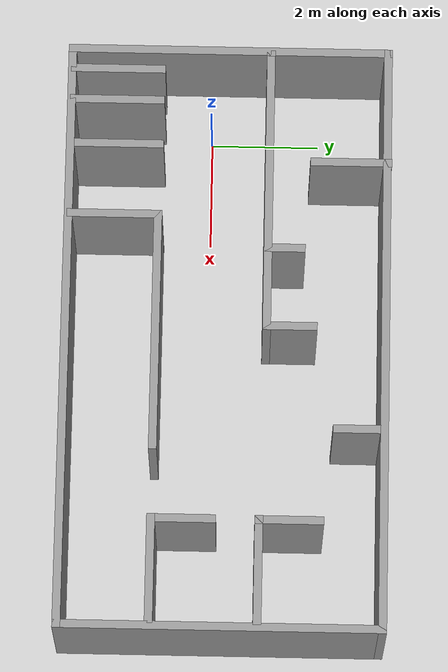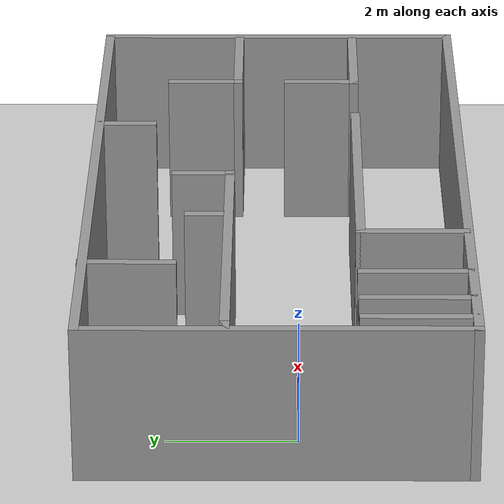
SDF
<sdf version="1.6">
 <world name="default">
  <light name="sun" type="directional">
   <pose>0 0 10 0 -0 0</pose>
   <diffuse>0.8 0.8 0.8 1</diffuse>
   <specular>0.2 0.2 0.2 1</specular>
   <attenuation>
    <range>1000</range>
    <constant>0.9</constant>
    <linear>0.01</linear>
    <quadratic>0.001</quadratic>
   </attenuation>
   <direction>-0.5 0.1 -0.9</direction>
  </light>
  <model name="ground_plane">
   <static>1</static>
   <link name="link">
    <collision name="collision">
     <geometry><plane><normal>0 0 1</normal><size>100 100</size></plane></geometry>
     <surface>
      <contact><collide_bitmask>65535</collide_bitmask></contact>
      <friction><ode><mu>100</mu><mu2>50</mu2></ode></friction>
     </surface>
    </collision>
    <visual name="visual">
     <cast_shadows>0</cast_shadows>
     <geometry><plane><normal>0 0 1</normal><size>100 100</size></plane></geometry>
     <material>
      <script><uri>file://media/materials/scripts/gazebo.material</uri><name>Gazebo/Grey</name></script>
     </material>
    </visual>
   </link>
  </model>
  <gravity>0 0 -9.8</gravity>
  <magnetic_field>6e-06 2.3e-05 -4.2e-05</magnetic_field>
  <atmosphere type="adiabatic"/>
  <physics name="default_physics" default="0" type="ode">
   <max_step_size>0.001</max_step_size>
   <real_time_factor>1</real_time_factor>
   <real_time_update_rate>1000</real_time_update_rate>
  </physics>
  <scene><ambient>0.4 0.4 0.4 1</ambient><background>0.7 0.7 0.7 1</background><shadows>1</shadows></scene>
  <audio><device>default</device></audio>
  <spherical_coordinates>
   <surface_model>EARTH_WGS84</surface_model>
   <latitude_deg>0</latitude_deg>
   <longitude_deg>0</longitude_deg>
   <elevation>0</elevation>
   <heading_deg>0</heading_deg>
  </spherical_coordinates>
  <model name="corridor">
   <pose>4.35155 0.387255 0 0 -0 0</pose>
   <link name="Wall_0">
    <collision name="Wall_0_Collision">
     <geometry><box><size>11 0.15 2.5</size></box></geometry>
     <pose>0 0 1.25 0 -0 0</pose>
    </collision>
    <visual name="Wall_0_Visual">
     <pose>0 0 1.25 0 -0 0</pose>
     <geometry><box><size>11 0.15 2.5</size></box></geometry>
     <material>
      <script><uri>file://media/materials/scripts/gazebo.material</uri><name>Gazebo/Grey</name></script>
      <ambient>1 1 1 1</ambient>
     </material>
     <meta><layer>0</layer></meta>
    </visual>
    <pose>0 -2.9875 0 0 -0 3.14159</pose>
   </link>
   <link name="Wall_1">
    <collision name="Wall_1_Collision">
     <geometry><box><size>6 0.15 2.5</size></box></geometry>
     <pose>0 0 1.25 0 -0 0</pose>
    </collision>
    <visual name="Wall_1_Visual">
     <pose>0 0 1.25 0 -0 0</pose>
     <geometry><box><size>6 0.15 2.5</size></box></geometry>
     <material>
      <script><uri>file://media/materials/scripts/gazebo.material</uri><name>Gazebo/Grey</name></script>
      <ambient>1 1 1 1</ambient>
     </material>
     <meta><layer>0</layer></meta>
    </visual>
    <pose>-5.425 -0.0625 0 0 -0 1.5708</pose>
   </link>
   <link name="Wall_13">
    <collision name="Wall_13_Collision">
     <geometry><box><size>1.75 0.15 2.5</size></box></geometry>
     <pose>0 0 1.25 0 -0 0</pose>
    </collision>
    <visual name="Wall_13_Visual">
     <pose>0 0 1.25 0 -0 0</pose>
     <geometry><box><size>1.75 0.15 2.5</size></box></geometry>
     <material>
      <script><uri>file://media/materials/scripts/gazebo.material</uri><name>Gazebo/Grey</name></script>
      <ambient>1 1 1 1</ambient>
     </material>
     <meta><layer>0</layer></meta>
    </visual>
    <pose>-4.445 -2.1375 0 0 -0 -1.5708</pose>
   </link>
   <link name="Wall_16">
    <collision name="Wall_16_Collision">
     <geometry><box><size>1.75 0.15 2.5</size></box></geometry>
     <pose>0 0 1.25 0 -0 0</pose>
    </collision>
    <visual name="Wall_16_Visual">
     <pose>0 0 1.25 0 -0 0</pose>
     <geometry><box><size>1.75 0.15 2.5</size></box></geometry>
     <material>
      <script><uri>file://media/materials/scripts/gazebo.material</uri><name>Gazebo/Grey</name></script>
      <ambient>1 1 1 1</ambient>
     </material>
     <meta><layer>0</layer></meta>
    </visual>
    <pose>-3.595 -2.1375 0 0 -0 -1.5708</pose>
   </link>
   <link name="Wall_19">
    <collision name="Wall_19_Collision">
     <geometry><box><size>1.75 0.15 2.5</size></box></geometry>
     <pose>0 0 1.25 0 -0 0</pose>
    </collision>
    <visual name="Wall_19_Visual">
     <pose>0 0 1.25 0 -0 0</pose>
     <geometry><box><size>1.75 0.15 2.5</size></box></geometry>
     <material>
      <script><uri>file://media/materials/scripts/gazebo.material</uri><name>Gazebo/Grey</name></script>
      <ambient>1 1 1 1</ambient>
     </material>
     <meta><layer>0</layer></meta>
    </visual>
    <pose>-2.245 -2.1375 0 0 -0 -1.5708</pose>
   </link>
   <link name="Wall_24">
    <collision name="Wall_24_Collision">
     <geometry><box><size>4.5 0.15 2.5</size></box></geometry>
     <pose>0 0 1.25 0 -0 0</pose>
    </collision>
    <visual name="Wall_24_Visual">
     <pose>0 0 1.25 0 -0 0</pose>
     <geometry><box><size>4.5 0.15 2.5</size></box></geometry>
     <material>
      <script><uri>file://media/materials/scripts/gazebo.material</uri><name>Gazebo/Grey</name></script>
      <ambient>1 1 1 1</ambient>
     </material>
     <meta><layer>0</layer></meta>
    </visual>
    <pose>-0.07 -1.3375 0 0 -0 0</pose>
   </link>
   <link name="Wall_3">
    <collision name="Wall_3_Collision">
     <geometry><box><size>6 0.15 2.5</size></box></geometry>
     <pose>0 0 1.25 0 -0 0</pose>
    </collision>
    <visual name="Wall_3_Visual">
     <pose>0 0 1.25 0 -0 0</pose>
     <geometry><box><size>6 0.15 2.5</size></box></geometry>
     <material>
      <script><uri>file://media/materials/scripts/gazebo.material</uri><name>Gazebo/Grey</name></script>
      <ambient>1 1 1 1</ambient>
     </material>
     <meta><layer>0</layer></meta>
    </visual>
    <pose>5.425 -0.0625 0 0 -0 1.5708</pose>
   </link>
   <link name="Wall_31">
    <collision name="Wall_31_Collision">
     <geometry><box><size>2 0.15 2.5</size></box></geometry>
     <pose>0 0 1.25 0 -0 0</pose>
    </collision>
    <visual name="Wall_31_Visual">
     <pose>0 0 1.25 0 -0 0</pose>
     <geometry><box><size>2 0.15 2.5</size></box></geometry>
     <material>
      <script><uri>file://media/materials/scripts/gazebo.material</uri><name>Gazebo/Grey</name></script>
      <ambient>1 1 1 1</ambient>
     </material>
     <meta><layer>0</layer></meta>
    </visual>
    <pose>4.38 -1.3375 0 0 -0 0</pose>
   </link>
   <link name="Wall_33">
    <collision name="Wall_33_Collision">
     <geometry><box><size>1.25 0.15 2.5</size></box></geometry>
     <pose>0 0 1.25 0 -0 0</pose>
    </collision>
    <visual name="Wall_33_Visual">
     <pose>0 0 1.25 0 -0 0</pose>
     <geometry><box><size>1.25 0.15 2.5</size></box></geometry>
     <material>
      <script><uri>file://media/materials/scripts/gazebo.material</uri><name>Gazebo/Grey</name></script>
      <ambient>1 1 1 1</ambient>
     </material>
     <meta><layer>0</layer></meta>
    </visual>
    <pose>3.455 -0.7875 0 0 -0 1.5708</pose>
   </link>
   <link name="Wall_35">
    <collision name="Wall_35_Collision">
     <geometry><box><size>2 0.15 2.5</size></box></geometry>
     <pose>0 0 1.25 0 -0 0</pose>
    </collision>
    <visual name="Wall_35_Visual">
     <pose>0 0 1.25 0 -0 0</pose>
     <geometry><box><size>2 0.15 2.5</size></box></geometry>
     <material>
      <script><uri>file://media/materials/scripts/gazebo.material</uri><name>Gazebo/Grey</name></script>
      <ambient>1 1 1 1</ambient>
     </material>
     <meta><layer>0</layer></meta>
    </visual>
    <pose>4.38 0.6125 0 0 -0 0</pose>
   </link>
   <link name="Wall_40">
    <collision name="Wall_40_Collision">
     <geometry><box><size>1.25 0.15 2.5</size></box></geometry>
     <pose>0 0 1.25 0 -0 0</pose>
    </collision>
    <visual name="Wall_40_Visual">
     <pose>0 0 1.25 0 -0 0</pose>
     <geometry><box><size>1.25 0.15 2.5</size></box></geometry>
     <material>
      <script><uri>file://media/materials/scripts/gazebo.material</uri><name>Gazebo/Grey</name></script>
      <ambient>1 1 1 1</ambient>
     </material>
     <meta><layer>0</layer></meta>
    </visual>
    <pose>3.455 1.1625 0 0 -0 1.5708</pose>
   </link>
   <link name="Wall_43">
    <collision name="Wall_43_Collision">
     <geometry><box><size>1 0.15 2.5</size></box></geometry>
     <pose>0 0 1.25 0 -0 0</pose>
    </collision>
    <visual name="Wall_43_Visual">
     <pose>0 0 1.25 0 -0 0</pose>
     <geometry><box><size>1 0.15 2.5</size></box></geometry>
     <material>
      <script><uri>file://media/materials/scripts/gazebo.material</uri><name>Gazebo/Grey</name></script>
      <ambient>1 1 1 1</ambient>
     </material>
     <meta><layer>0</layer></meta>
    </visual>
    <pose>-0.165 1.1175 0 0 -0 -1.5708</pose>
   </link>
   <link name="Wall_44">
    <collision name="Wall_44_Collision">
     <geometry><box><size>5.25 0.15 2.5</size></box></geometry>
     <pose>0 0 1.25 0 -0 0</pose>
    </collision>
    <visual name="Wall_44_Visual">
     <pose>0 0 1.25 0 -0 0</pose>
     <geometry><box><size>5.25 0.15 2.5</size></box></geometry>
     <material>
      <script><uri>file://media/materials/scripts/gazebo.material</uri><name>Gazebo/Grey</name></script>
      <ambient>1 1 1 1</ambient>
     </material>
     <meta><layer>0</layer></meta>
    </visual>
    <pose>-2.715 0.6925 0 0 -0 3.14159</pose>
   </link>
   <link name="Wall_48">
    <collision name="Wall_48_Collision">
     <geometry><box><size>0.25 0.15 2.5</size></box></geometry>
     <pose>0 0 1.25 0 -0 0</pose>
    </collision>
    <visual name="Wall_48_Visual">
     <pose>0 0 1.25 0 -0 0</pose>
     <geometry><box><size>0.25 0.15 2.5</size></box></geometry>
     <material>
      <script><uri>file://media/materials/scripts/gazebo.material</uri><name>Gazebo/Grey</name></script>
      <ambient>1 1 1 1</ambient>
     </material>
     <meta><layer>0</layer></meta>
    </visual>
    <pose>-5.315 0.6925 0 0 -0 3.14159</pose>
   </link>
   <link name="Wall_52">
    <collision name="Wall_52_Collision">
     <geometry><box><size>1.5 0.15 2.5</size></box></geometry>
     <pose>0 0 1.25 0 -0 0</pose>
    </collision>
    <visual name="Wall_52_Visual">
     <pose>0 0 1.25 0 -0 0</pose>
     <geometry><box><size>1.5 0.15 2.5</size></box></geometry>
     <material>
      <script><uri>file://media/materials/scripts/gazebo.material</uri><name>Gazebo/Grey</name></script>
      <ambient>1 1 1 1</ambient>
     </material>
     <meta><layer>0</layer></meta>
    </visual>
    <pose>-3.305 2.1975 0 0 -0 1.5708</pose>
   </link>
   <link name="Wall_55">
    <collision name="Wall_55_Collision">
     <geometry><box><size>0.75 0.15 2.5</size></box></geometry>
     <pose>0 0 1.25 0 -0 0</pose>
    </collision>
    <visual name="Wall_55_Visual">
     <pose>0 0 1.25 0 -0 0</pose>
     <geometry><box><size>0.75 0.15 2.5</size></box></geometry>
     <material>
      <script><uri>file://media/materials/scripts/gazebo.material</uri><name>Gazebo/Grey</name></script>
      <ambient>1 1 1 1</ambient>
     </material>
     <meta><layer>0</layer></meta>
    </visual>
    <pose>-1.645 1.0025 0 0 -0 1.5708</pose>
   </link>
   <link name="Wall_57">
    <collision name="Wall_57_Collision">
     <geometry><box><size>1 0.15 2.5</size></box></geometry>
     <pose>0 0 1.25 0 -0 0</pose>
    </collision>
    <visual name="Wall_57_Visual">
     <pose>0 0 1.25 0 -0 0</pose>
     <geometry><box><size>1 0.15 2.5</size></box></geometry>
     <material>
      <script><uri>file://media/materials/scripts/gazebo.material</uri><name>Gazebo/Grey</name></script>
      <ambient>1 1 1 1</ambient>
     </material>
     <meta><layer>0</layer></meta>
    </visual>
    <pose>1.745 2.4275 0 0 -0 -1.5708</pose>
   </link>
   <link name="Wall_6">
    <collision name="Wall_6_Collision">
     <geometry><box><size>11 0.15 2.5</size></box></geometry>
     <pose>0 0 1.25 0 -0 0</pose>
    </collision>
    <visual name="Wall_6_Visual">
     <pose>0 0 1.25 0 -0 0</pose>
     <geometry><box><size>11 0.15 2.5</size></box></geometry>
     <material>
      <script><uri>file://media/materials/scripts/gazebo.material</uri><name>Gazebo/Grey</name></script>
      <ambient>1 1 1 1</ambient>
     </material>
     <meta><layer>0</layer></meta>
    </visual>
    <pose>0 2.8625 0 0 -0 0</pose>
   </link>
   <link name="Wall_9">
    <collision name="Wall_9_Collision">
     <geometry><box><size>1.75 0.15 2.5</size></box></geometry>
     <pose>0 0 1.25 0 -0 0</pose>
    </collision>
    <visual name="Wall_9_Visual">
     <pose>0 0 1.25 0 -0 0</pose>
     <geometry><box><size>1.75 0.15 2.5</size></box></geometry>
     <material>
      <script><uri>file://media/materials/scripts/gazebo.material</uri><name>Gazebo/Grey</name></script>
      <ambient>1 1 1 1</ambient>
     </material>
     <meta><layer>0</layer></meta>
    </visual>
    <pose>-5.045 -2.1375 0 0 -0 -1.5708</pose>
   </link>
   <static>1</static>
  </model>
 </world>
</sdf>
